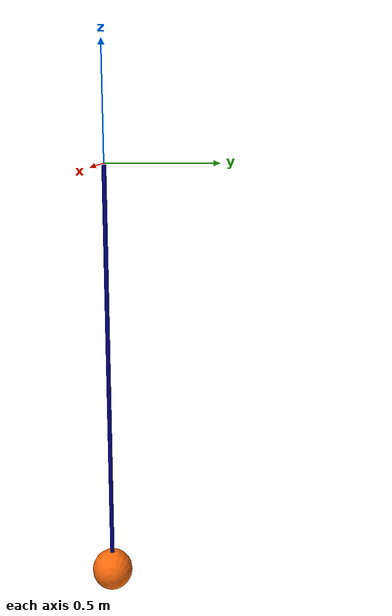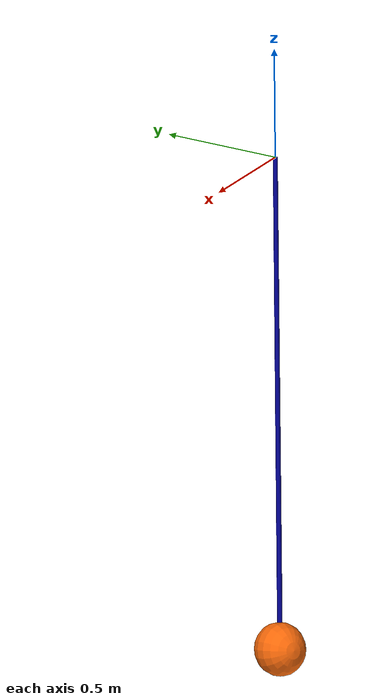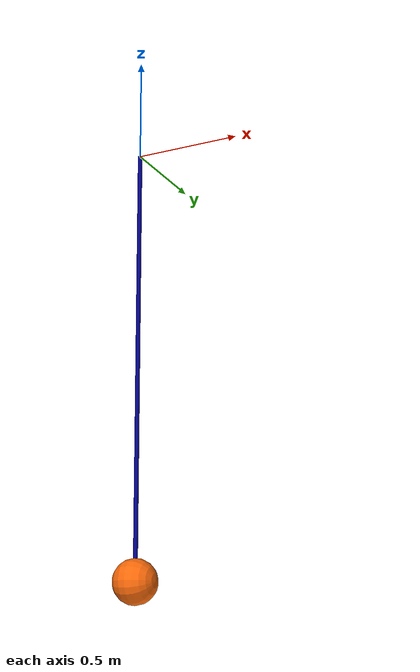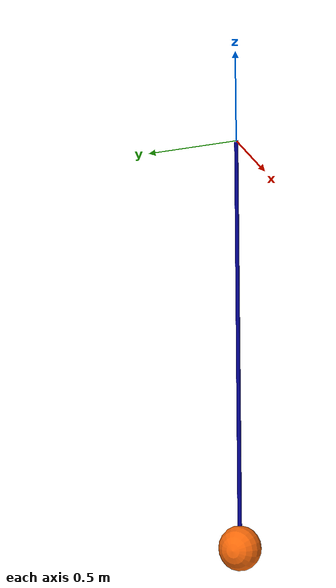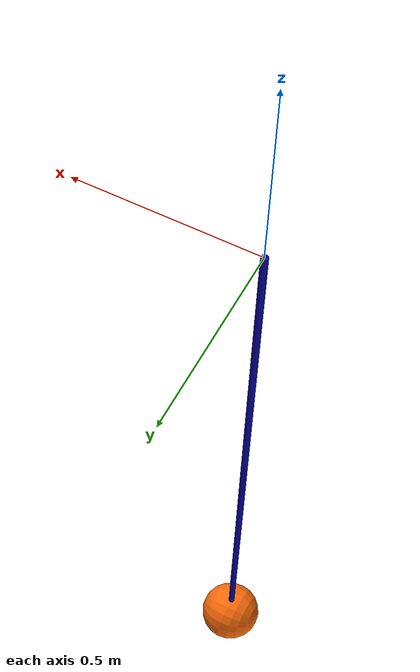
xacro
<?xml version="1.0"?>

<robot xmlns:xacro="http://www.ros.org/wiki/xacro" name="pendulum">

 <xacro:property name="radius" value="0.1" />

<xacro:property name="length" value="2.0" />
<xacro:property name="rod_radius" value="0.01" />

    <joint name="pendulum_joint" type="continuous">
      <origin xyz="0 0 0" rpy="0 1.57 0 "/>
      <axis xyz="0 1 0"/>
      <parent link="world"/>
      <child link="pendulum_link"/>
      <dynamics damping="0.01"/>
      <limit effort="0" velocity="0"/>
      <safety_controller k_velocity="0"/>
    </joint>

    <link name="world">
      <inertial>
        <mass value="0" />
        <origin xyz="0.0 0.0 0" rpy="0 0 0" />
        <inertia  ixx="0" ixy="0" ixz="0"
                  iyy="0" iyz="0"
                  izz="0" />
      </inertial>
    </link>

    <link name="pendulum_link">
      <inertial>
        <mass value="0.05" />
        <origin xyz="0.25 0 0" rpy="0 0 0" />
        <inertia  ixx="0.001" ixy="0.0" ixz="0.0"
                  iyy="0.001" iyz="0.0"
                  izz="0.001" />
      </inertial>
      <visual>
        <origin xyz="${length} 0 0" rpy="0 0 0" />
        <geometry>
          <sphere radius="${radius}"/>
        </geometry>
          <material name="Orange">
    <color rgba="${255/255} ${108/255} ${10/255} 1.0"/>
  </material>

      </visual>
      <collision>
        <origin xyz="0 0 0.25" rpy="0 0 0" />
        <geometry>
          <sphere radius="${radius}"/>
        </geometry>
      </collision>
    </link>

    <joint name="pendulum_fixed_joint" type="fixed">
      <origin xyz="0 0 0" rpy="0 0 0" />
      <parent link="pendulum_link"/>
      <child link="pendulum_rod_link"/>
    </joint>

    <link name="pendulum_rod_link">
      <inertial>
        <mass value="0.001" />
        <origin xyz="0 0 0" rpy="0 0 0" />
        <inertia  ixx="0.001" ixy="0.0" ixz="0.0"
                  iyy="0.001" iyz="0.0"
                  izz="0.001" />
      </inertial>
      <visual>
        <origin xyz="${length/2} 0 0" rpy="0 1.5708 0" />
        <geometry>
          <cylinder radius="${rod_radius}" length="${length}"/>
        </geometry>
          <material name="Dark blue">
    <color rgba="${0/255} ${0/255} ${140/255} 1.0"/>
  </material>

      </visual>
      <collision>
        <origin xyz="0 0 0.125" rpy="0 0 0" />
        <geometry>
          <cylinder radius="${rod_radius}" length="${length}"/>
        </geometry>
      </collision>
    </link>
</robot>
